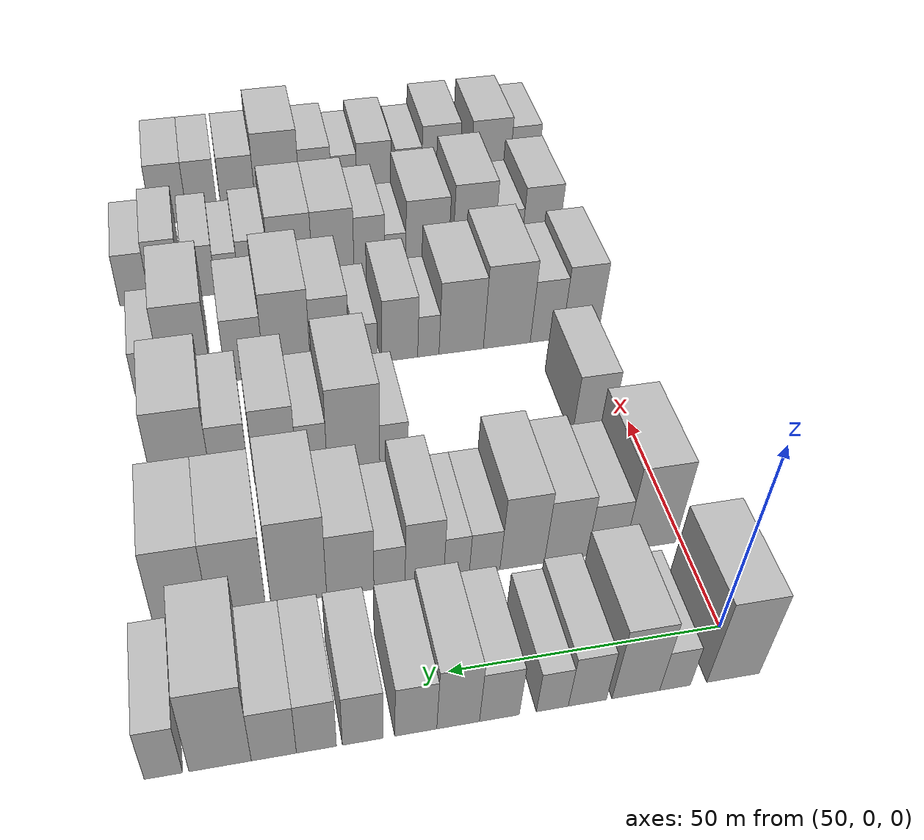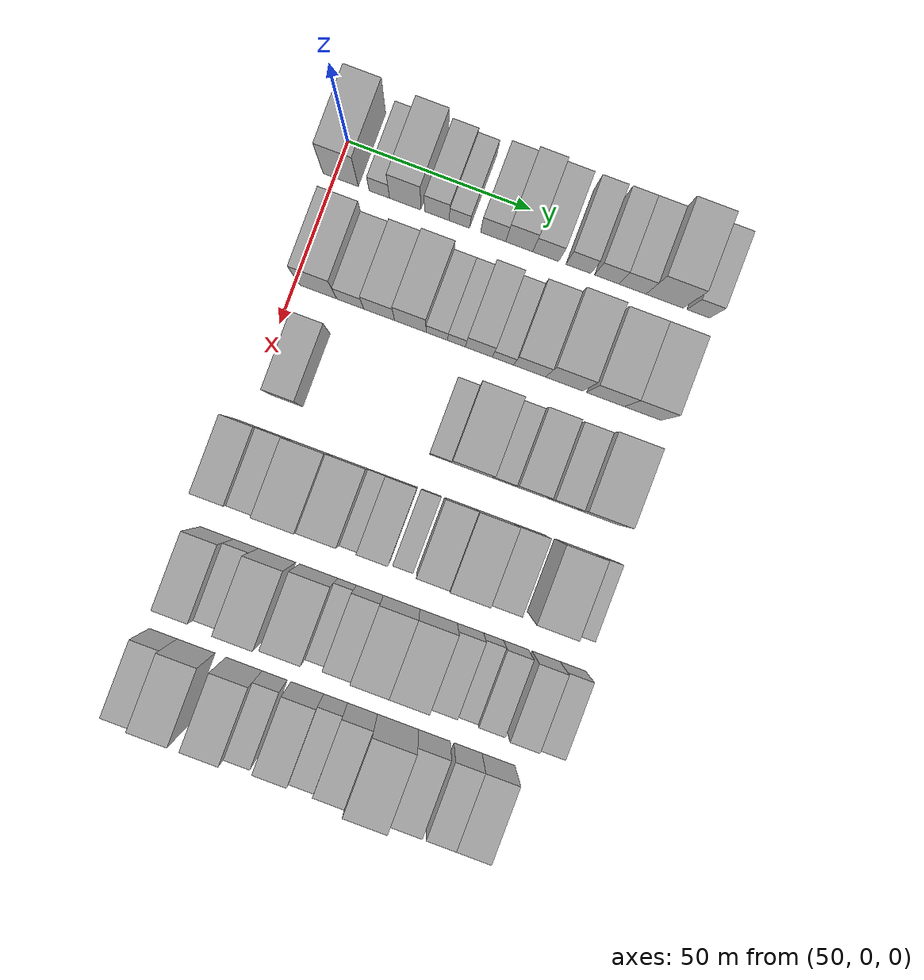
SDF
<sdf version="1.6">
 <world name="default">
  <model name="building_55">
   <static>1</static>
   <pose>50.0000 1.6876 0 0.000000 0.000000 0.000000</pose>
   <link name="link">
    <pose>0 0 12.00 0 0 0</pose>
    <collision name="collision"><geometry><box><size>20.0000 9.6382 24.0000</size></box></geometry></collision>
    <visual name="visual">
     <cast_shadows>0</cast_shadows>
     <geometry><box><size>20.0000 9.6382 24.0000</size></box></geometry>
     <material>
      <script>
       <uri>model://HANNAS_wall/materials/scripts</uri>
       <uri>model://HANNAS_wall/materials/textures</uri>
       <name>vrc/HANNAS_wall</name>
      </script>
     </material>
    </visual>
   </link>
  </model>
  <model name="building_56">
   <static>1</static>
   <pose>50.0000 12.2809 0 0.000000 0.000000 0.000000</pose>
   <link name="link">
    <pose>0 0 6.00 0 0 0</pose>
    <collision name="collision"><geometry><box><size>20.0000 5.5483 12.0000</size></box></geometry></collision>
    <visual name="visual">
     <cast_shadows>0</cast_shadows>
     <geometry><box><size>20.0000 5.5483 12.0000</size></box></geometry>
     <material>
      <script>
       <uri>model://HANNAS_wall/materials/scripts</uri>
       <uri>model://HANNAS_wall/materials/textures</uri>
       <name>vrc/HANNAS_wall</name>
      </script>
     </material>
    </visual>
   </link>
  </model>
  <model name="building_57">
   <static>1</static>
   <pose>50.0000 19.3455 0 0.000000 0.000000 0.000000</pose>
   <link name="link">
    <pose>0 0 10.50 0 0 0</pose>
    <collision name="collision"><geometry><box><size>20.0000 8.5810 21.0000</size></box></geometry></collision>
    <visual name="visual">
     <cast_shadows>0</cast_shadows>
     <geometry><box><size>20.0000 8.5810 21.0000</size></box></geometry>
     <material>
      <script>
       <uri>model://HANNAS_wall/materials/scripts</uri>
       <uri>model://HANNAS_wall/materials/textures</uri>
       <name>vrc/HANNAS_wall</name>
      </script>
     </material>
    </visual>
   </link>
  </model>
  <model name="building_58">
   <static>1</static>
   <pose>50.0000 28.0210 0 0.000000 0.000000 0.000000</pose>
   <link name="link">
    <pose>0 0 7.50 0 0 0</pose>
    <collision name="collision"><geometry><box><size>20.0000 6.7700 15.0000</size></box></geometry></collision>
    <visual name="visual">
     <cast_shadows>0</cast_shadows>
     <geometry><box><size>20.0000 6.7700 15.0000</size></box></geometry>
     <material>
      <script>
       <uri>model://HANNAS_wall/materials/scripts</uri>
       <uri>model://HANNAS_wall/materials/textures</uri>
       <name>vrc/HANNAS_wall</name>
      </script>
     </material>
    </visual>
   </link>
  </model>
  <model name="building_59">
   <static>1</static>
   <pose>50.0000 34.2155 0 0.000000 0.000000 0.000000</pose>
   <link name="link">
    <pose>0 0 6.00 0 0 0</pose>
    <collision name="collision"><geometry><box><size>20.0000 5.6189 12.0000</size></box></geometry></collision>
    <visual name="visual">
     <cast_shadows>0</cast_shadows>
     <geometry><box><size>20.0000 5.6189 12.0000</size></box></geometry>
     <material>
      <script>
       <uri>model://HANNAS_wall/materials/scripts</uri>
       <uri>model://HANNAS_wall/materials/textures</uri>
       <name>vrc/HANNAS_wall</name>
      </script>
     </material>
    </visual>
   </link>
  </model>
  <model name="building_60">
   <static>1</static>
   <pose>50.0000 43.4858 0 0.000000 0.000000 0.000000</pose>
   <link name="link">
    <pose>0 0 7.50 0 0 0</pose>
    <collision name="collision"><geometry><box><size>20.0000 6.9217 15.0000</size></box></geometry></collision>
    <visual name="visual">
     <cast_shadows>0</cast_shadows>
     <geometry><box><size>20.0000 6.9217 15.0000</size></box></geometry>
     <material>
      <script>
       <uri>model://HANNAS_wall/materials/scripts</uri>
       <uri>model://HANNAS_wall/materials/textures</uri>
       <name>vrc/HANNAS_wall</name>
      </script>
     </material>
    </visual>
   </link>
  </model>
  <model name="building_61">
   <static>1</static>
   <pose>50.0000 50.6278 0 0.000000 0.000000 0.000000</pose>
   <link name="link">
    <pose>0 0 9.00 0 0 0</pose>
    <collision name="collision"><geometry><box><size>20.0000 7.3623 18.0000</size></box></geometry></collision>
    <visual name="visual">
     <cast_shadows>0</cast_shadows>
     <geometry><box><size>20.0000 7.3623 18.0000</size></box></geometry>
     <material>
      <script>
       <uri>model://HANNAS_wall/materials/scripts</uri>
       <uri>model://HANNAS_wall/materials/textures</uri>
       <name>vrc/HANNAS_wall</name>
      </script>
     </material>
    </visual>
   </link>
  </model>
  <model name="building_62">
   <static>1</static>
   <pose>50.0000 57.8925 0 0.000000 0.000000 0.000000</pose>
   <link name="link">
    <pose>0 0 7.50 0 0 0</pose>
    <collision name="collision"><geometry><box><size>20.0000 7.1673 15.0000</size></box></geometry></collision>
    <visual name="visual">
     <cast_shadows>0</cast_shadows>
     <geometry><box><size>20.0000 7.1673 15.0000</size></box></geometry>
     <material>
      <script>
       <uri>model://HANNAS_wall/materials/scripts</uri>
       <uri>model://HANNAS_wall/materials/textures</uri>
       <name>vrc/HANNAS_wall</name>
      </script>
     </material>
    </visual>
   </link>
  </model>
  <model name="building_63">
   <static>1</static>
   <pose>50.0000 66.8989 0 0.000000 0.000000 0.000000</pose>
   <link name="link">
    <pose>0 0 7.50 0 0 0</pose>
    <collision name="collision"><geometry><box><size>20.0000 6.8454 15.0000</size></box></geometry></collision>
    <visual name="visual">
     <cast_shadows>0</cast_shadows>
     <geometry><box><size>20.0000 6.8454 15.0000</size></box></geometry>
     <material>
      <script>
       <uri>model://HANNAS_wall/materials/scripts</uri>
       <uri>model://HANNAS_wall/materials/textures</uri>
       <name>vrc/HANNAS_wall</name>
      </script>
     </material>
    </visual>
   </link>
  </model>
  <model name="building_64">
   <static>1</static>
   <pose>50.0000 74.6538 0 0.000000 0.000000 0.000000</pose>
   <link name="link">
    <pose>0 0 7.50 0 0 0</pose>
    <collision name="collision"><geometry><box><size>20.0000 6.6643 15.0000</size></box></geometry></collision>
    <visual name="visual">
     <cast_shadows>0</cast_shadows>
     <geometry><box><size>20.0000 6.6643 15.0000</size></box></geometry>
     <material>
      <script>
       <uri>model://HANNAS_wall/materials/scripts</uri>
       <uri>model://HANNAS_wall/materials/textures</uri>
       <name>vrc/HANNAS_wall</name>
      </script>
     </material>
    </visual>
   </link>
  </model>
  <model name="building_65">
   <static>1</static>
   <pose>50.0000 81.7126 0 0.000000 0.000000 0.000000</pose>
   <link name="link">
    <pose>0 0 7.50 0 0 0</pose>
    <collision name="collision"><geometry><box><size>20.0000 7.4533 15.0000</size></box></geometry></collision>
    <visual name="visual">
     <cast_shadows>0</cast_shadows>
     <geometry><box><size>20.0000 7.4533 15.0000</size></box></geometry>
     <material>
      <script>
       <uri>model://HANNAS_wall/materials/scripts</uri>
       <uri>model://HANNAS_wall/materials/textures</uri>
       <name>vrc/HANNAS_wall</name>
      </script>
     </material>
    </visual>
   </link>
  </model>
  <model name="building_66">
   <static>1</static>
   <pose>50.0000 90.5444 0 0.000000 0.000000 0.000000</pose>
   <link name="link">
    <pose>0 0 12.00 0 0 0</pose>
    <collision name="collision"><geometry><box><size>20.0000 10.2104 24.0000</size></box></geometry></collision>
    <visual name="visual">
     <cast_shadows>0</cast_shadows>
     <geometry><box><size>20.0000 10.2104 24.0000</size></box></geometry>
     <material>
      <script>
       <uri>model://HANNAS_wall/materials/scripts</uri>
       <uri>model://HANNAS_wall/materials/textures</uri>
       <name>vrc/HANNAS_wall</name>
      </script>
     </material>
    </visual>
   </link>
  </model>
  <model name="building_67">
   <static>1</static>
   <pose>50.0000 99.7578 0 0.000000 0.000000 0.000000</pose>
   <link name="link">
    <pose>0 0 7.50 0 0 0</pose>
    <collision name="collision"><geometry><box><size>20.0000 6.2163 15.0000</size></box></geometry></collision>
    <visual name="visual">
     <cast_shadows>0</cast_shadows>
     <geometry><box><size>20.0000 6.2163 15.0000</size></box></geometry>
     <material>
      <script>
       <uri>model://HANNAS_wall/materials/scripts</uri>
       <uri>model://HANNAS_wall/materials/textures</uri>
       <name>vrc/HANNAS_wall</name>
      </script>
     </material>
    </visual>
   </link>
  </model>
  <model name="building_163">
   <static>1</static>
   <pose>79.0000 6.4632 0 0.000000 0.000000 0.000000</pose>
   <link name="link">
    <pose>0 0 12.00 0 0 0</pose>
    <collision name="collision"><geometry><box><size>20.0000 10.1292 24.0000</size></box></geometry></collision>
    <visual name="visual">
     <cast_shadows>0</cast_shadows>
     <geometry><box><size>20.0000 10.1292 24.0000</size></box></geometry>
     <material>
      <script>
       <uri>model://HANNAS_wall/materials/scripts</uri>
       <uri>model://HANNAS_wall/materials/textures</uri>
       <name>vrc/HANNAS_wall</name>
      </script>
     </material>
    </visual>
   </link>
  </model>
  <model name="building_164">
   <static>1</static>
   <pose>79.0000 15.2209 0 0.000000 0.000000 0.000000</pose>
   <link name="link">
    <pose>0 0 7.50 0 0 0</pose>
    <collision name="collision"><geometry><box><size>20.0000 7.3860 15.0000</size></box></geometry></collision>
    <visual name="visual">
     <cast_shadows>0</cast_shadows>
     <geometry><box><size>20.0000 7.3860 15.0000</size></box></geometry>
     <material>
      <script>
       <uri>model://HANNAS_wall/materials/scripts</uri>
       <uri>model://HANNAS_wall/materials/textures</uri>
       <name>vrc/HANNAS_wall</name>
      </script>
     </material>
    </visual>
   </link>
  </model>
  <model name="building_165">
   <static>1</static>
   <pose>79.0000 23.1251 0 0.000000 0.000000 0.000000</pose>
   <link name="link">
    <pose>0 0 9.00 0 0 0</pose>
    <collision name="collision"><geometry><box><size>20.0000 8.4223 18.0000</size></box></geometry></collision>
    <visual name="visual">
     <cast_shadows>0</cast_shadows>
     <geometry><box><size>20.0000 8.4223 18.0000</size></box></geometry>
     <material>
      <script>
       <uri>model://HANNAS_wall/materials/scripts</uri>
       <uri>model://HANNAS_wall/materials/textures</uri>
       <name>vrc/HANNAS_wall</name>
      </script>
     </material>
    </visual>
   </link>
  </model>
  <model name="building_166">
   <static>1</static>
   <pose>79.0000 31.6337 0 0.000000 0.000000 0.000000</pose>
   <link name="link">
    <pose>0 0 10.50 0 0 0</pose>
    <collision name="collision"><geometry><box><size>20.0000 8.5950 21.0000</size></box></geometry></collision>
    <visual name="visual">
     <cast_shadows>0</cast_shadows>
     <geometry><box><size>20.0000 8.5950 21.0000</size></box></geometry>
     <material>
      <script>
       <uri>model://HANNAS_wall/materials/scripts</uri>
       <uri>model://HANNAS_wall/materials/textures</uri>
       <name>vrc/HANNAS_wall</name>
      </script>
     </material>
    </visual>
   </link>
  </model>
  <model name="building_167">
   <static>1</static>
   <pose>79.0000 38.8877 0 0.000000 0.000000 0.000000</pose>
   <link name="link">
    <pose>0 0 6.00 0 0 0</pose>
    <collision name="collision"><geometry><box><size>20.0000 5.9130 12.0000</size></box></geometry></collision>
    <visual name="visual">
     <cast_shadows>0</cast_shadows>
     <geometry><box><size>20.0000 5.9130 12.0000</size></box></geometry>
     <material>
      <script>
       <uri>model://HANNAS_wall/materials/scripts</uri>
       <uri>model://HANNAS_wall/materials/textures</uri>
       <name>vrc/HANNAS_wall</name>
      </script>
     </material>
    </visual>
   </link>
  </model>
  <model name="building_168">
   <static>1</static>
   <pose>79.0000 44.2893 0 0.000000 0.000000 0.000000</pose>
   <link name="link">
    <pose>0 0 6.00 0 0 0</pose>
    <collision name="collision"><geometry><box><size>20.0000 4.8902 12.0000</size></box></geometry></collision>
    <visual name="visual">
     <cast_shadows>0</cast_shadows>
     <geometry><box><size>20.0000 4.8902 12.0000</size></box></geometry>
     <material>
      <script>
       <uri>model://HANNAS_wall/materials/scripts</uri>
       <uri>model://HANNAS_wall/materials/textures</uri>
       <name>vrc/HANNAS_wall</name>
      </script>
     </material>
    </visual>
   </link>
  </model>
  <model name="building_169">
   <static>1</static>
   <pose>79.0000 50.4029 0 0.000000 0.000000 0.000000</pose>
   <link name="link">
    <pose>0 0 9.00 0 0 0</pose>
    <collision name="collision"><geometry><box><size>20.0000 7.3370 18.0000</size></box></geometry></collision>
    <visual name="visual">
     <cast_shadows>0</cast_shadows>
     <geometry><box><size>20.0000 7.3370 18.0000</size></box></geometry>
     <material>
      <script>
       <uri>model://HANNAS_wall/materials/scripts</uri>
       <uri>model://HANNAS_wall/materials/textures</uri>
       <name>vrc/HANNAS_wall</name>
      </script>
     </material>
    </visual>
   </link>
  </model>
  <model name="building_170">
   <static>1</static>
   <pose>79.0000 56.9866 0 0.000000 0.000000 0.000000</pose>
   <link name="link">
    <pose>0 0 6.00 0 0 0</pose>
    <collision name="collision"><geometry><box><size>20.0000 5.8304 12.0000</size></box></geometry></collision>
    <visual name="visual">
     <cast_shadows>0</cast_shadows>
     <geometry><box><size>20.0000 5.8304 12.0000</size></box></geometry>
     <material>
      <script>
       <uri>model://HANNAS_wall/materials/scripts</uri>
       <uri>model://HANNAS_wall/materials/textures</uri>
       <name>vrc/HANNAS_wall</name>
      </script>
     </material>
    </visual>
   </link>
  </model>
  <model name="building_171">
   <static>1</static>
   <pose>79.0000 64.2986 0 0.000000 0.000000 0.000000</pose>
   <link name="link">
    <pose>0 0 9.00 0 0 0</pose>
    <collision name="collision"><geometry><box><size>20.0000 8.7936 18.0000</size></box></geometry></collision>
    <visual name="visual">
     <cast_shadows>0</cast_shadows>
     <geometry><box><size>20.0000 8.7936 18.0000</size></box></geometry>
     <material>
      <script>
       <uri>model://HANNAS_wall/materials/scripts</uri>
       <uri>model://HANNAS_wall/materials/textures</uri>
       <name>vrc/HANNAS_wall</name>
      </script>
     </material>
    </visual>
   </link>
  </model>
  <model name="building_172">
   <static>1</static>
   <pose>79.0000 73.8368 0 0.000000 0.000000 0.000000</pose>
   <link name="link">
    <pose>0 0 12.00 0 0 0</pose>
    <collision name="collision"><geometry><box><size>20.0000 10.2828 24.0000</size></box></geometry></collision>
    <visual name="visual">
     <cast_shadows>0</cast_shadows>
     <geometry><box><size>20.0000 10.2828 24.0000</size></box></geometry>
     <material>
      <script>
       <uri>model://HANNAS_wall/materials/scripts</uri>
       <uri>model://HANNAS_wall/materials/textures</uri>
       <name>vrc/HANNAS_wall</name>
      </script>
     </material>
    </visual>
   </link>
  </model>
  <model name="building_173">
   <static>1</static>
   <pose>79.0000 85.1371 0 0.000000 0.000000 0.000000</pose>
   <link name="link">
    <pose>0 0 10.50 0 0 0</pose>
    <collision name="collision"><geometry><box><size>20.0000 10.3178 21.0000</size></box></geometry></collision>
    <visual name="visual">
     <cast_shadows>0</cast_shadows>
     <geometry><box><size>20.0000 10.3178 21.0000</size></box></geometry>
     <material>
      <script>
       <uri>model://HANNAS_wall/materials/scripts</uri>
       <uri>model://HANNAS_wall/materials/textures</uri>
       <name>vrc/HANNAS_wall</name>
      </script>
     </material>
    </visual>
   </link>
  </model>
  <model name="building_174">
   <static>1</static>
   <pose>79.0000 95.3200 0 0.000000 0.000000 0.000000</pose>
   <link name="link">
    <pose>0 0 10.50 0 0 0</pose>
    <collision name="collision"><geometry><box><size>20.0000 10.0480 21.0000</size></box></geometry></collision>
    <visual name="visual">
     <cast_shadows>0</cast_shadows>
     <geometry><box><size>20.0000 10.0480 21.0000</size></box></geometry>
     <material>
      <script>
       <uri>model://HANNAS_wall/materials/scripts</uri>
       <uri>model://HANNAS_wall/materials/textures</uri>
       <name>vrc/HANNAS_wall</name>
      </script>
     </material>
    </visual>
   </link>
  </model>
  <model name="building_277">
   <static>1</static>
   <pose>108.0000 8.8311 0 0.000000 0.000000 0.000000</pose>
   <link name="link">
    <pose>0 0 9.00 0 0 0</pose>
    <collision name="collision"><geometry><box><size>20.0000 8.4463 18.0000</size></box></geometry></collision>
    <visual name="visual">
     <cast_shadows>0</cast_shadows>
     <geometry><box><size>20.0000 8.4463 18.0000</size></box></geometry>
     <material>
      <script>
       <uri>model://HANNAS_wall/materials/scripts</uri>
       <uri>model://HANNAS_wall/materials/textures</uri>
       <name>vrc/HANNAS_wall</name>
      </script>
     </material>
    </visual>
   </link>
  </model>
  <model name="building_278">
   <static>1</static>
   <pose>108.0000 50.7132 0 0.000000 0.000000 0.000000</pose>
   <link name="link">
    <pose>0 0 6.00 0 0 0</pose>
    <collision name="collision"><geometry><box><size>20.0000 5.7726 12.0000</size></box></geometry></collision>
    <visual name="visual">
     <cast_shadows>0</cast_shadows>
     <geometry><box><size>20.0000 5.7726 12.0000</size></box></geometry>
     <material>
      <script>
       <uri>model://HANNAS_wall/materials/scripts</uri>
       <uri>model://HANNAS_wall/materials/textures</uri>
       <name>vrc/HANNAS_wall</name>
      </script>
     </material>
    </visual>
   </link>
  </model>
  <model name="building_279">
   <static>1</static>
   <pose>108.0000 58.9692 0 0.000000 0.000000 0.000000</pose>
   <link name="link">
    <pose>0 0 12.00 0 0 0</pose>
    <collision name="collision"><geometry><box><size>20.0000 10.7393 24.0000</size></box></geometry></collision>
    <visual name="visual">
     <cast_shadows>0</cast_shadows>
     <geometry><box><size>20.0000 10.7393 24.0000</size></box></geometry>
     <material>
      <script>
       <uri>model://HANNAS_wall/materials/scripts</uri>
       <uri>model://HANNAS_wall/materials/textures</uri>
       <name>vrc/HANNAS_wall</name>
      </script>
     </material>
    </visual>
   </link>
  </model>
  <model name="building_280">
   <static>1</static>
   <pose>108.0000 67.4175 0 0.000000 0.000000 0.000000</pose>
   <link name="link">
    <pose>0 0 7.50 0 0 0</pose>
    <collision name="collision"><geometry><box><size>20.0000 6.1573 15.0000</size></box></geometry></collision>
    <visual name="visual">
     <cast_shadows>0</cast_shadows>
     <geometry><box><size>20.0000 6.1573 15.0000</size></box></geometry>
     <material>
      <script>
       <uri>model://HANNAS_wall/materials/scripts</uri>
       <uri>model://HANNAS_wall/materials/textures</uri>
       <name>vrc/HANNAS_wall</name>
      </script>
     </material>
    </visual>
   </link>
  </model>
  <model name="building_281">
   <static>1</static>
   <pose>108.0000 74.7666 0 0.000000 0.000000 0.000000</pose>
   <link name="link">
    <pose>0 0 10.50 0 0 0</pose>
    <collision name="collision"><geometry><box><size>20.0000 8.5410 21.0000</size></box></geometry></collision>
    <visual name="visual">
     <cast_shadows>0</cast_shadows>
     <geometry><box><size>20.0000 8.5410 21.0000</size></box></geometry>
     <material>
      <script>
       <uri>model://HANNAS_wall/materials/scripts</uri>
       <uri>model://HANNAS_wall/materials/textures</uri>
       <name>vrc/HANNAS_wall</name>
      </script>
     </material>
    </visual>
   </link>
  </model>
  <model name="building_282">
   <static>1</static>
   <pose>108.0000 83.7679 0 0.000000 0.000000 0.000000</pose>
   <link name="link">
    <pose>0 0 9.00 0 0 0</pose>
    <collision name="collision"><geometry><box><size>20.0000 7.4615 18.0000</size></box></geometry></collision>
    <visual name="visual">
     <cast_shadows>0</cast_shadows>
     <geometry><box><size>20.0000 7.4615 18.0000</size></box></geometry>
     <material>
      <script>
       <uri>model://HANNAS_wall/materials/scripts</uri>
       <uri>model://HANNAS_wall/materials/textures</uri>
       <name>vrc/HANNAS_wall</name>
      </script>
     </material>
    </visual>
   </link>
  </model>
  <model name="building_283">
   <static>1</static>
   <pose>108.0000 93.1952 0 0.000000 0.000000 0.000000</pose>
   <link name="link">
    <pose>0 0 12.00 0 0 0</pose>
    <collision name="collision"><geometry><box><size>20.0000 11.3932 24.0000</size></box></geometry></collision>
    <visual name="visual">
     <cast_shadows>0</cast_shadows>
     <geometry><box><size>20.0000 11.3932 24.0000</size></box></geometry>
     <material>
      <script>
       <uri>model://HANNAS_wall/materials/scripts</uri>
       <uri>model://HANNAS_wall/materials/textures</uri>
       <name>vrc/HANNAS_wall</name>
      </script>
     </material>
    </visual>
   </link>
  </model>
  <model name="building_390">
   <static>1</static>
   <pose>137.0000 2.2405 0 0.000000 0.000000 0.000000</pose>
   <link name="link">
    <pose>0 0 10.50 0 0 0</pose>
    <collision name="collision"><geometry><box><size>20.0000 8.6264 21.0000</size></box></geometry></collision>
    <visual name="visual">
     <cast_shadows>0</cast_shadows>
     <geometry><box><size>20.0000 8.6264 21.0000</size></box></geometry>
     <material>
      <script>
       <uri>model://HANNAS_wall/materials/scripts</uri>
       <uri>model://HANNAS_wall/materials/textures</uri>
       <name>vrc/HANNAS_wall</name>
      </script>
     </material>
    </visual>
   </link>
  </model>
  <model name="building_391">
   <static>1</static>
   <pose>137.0000 10.2466 0 0.000000 0.000000 0.000000</pose>
   <link name="link">
    <pose>0 0 9.00 0 0 0</pose>
    <collision name="collision"><geometry><box><size>20.0000 7.3857 18.0000</size></box></geometry></collision>
    <visual name="visual">
     <cast_shadows>0</cast_shadows>
     <geometry><box><size>20.0000 7.3857 18.0000</size></box></geometry>
     <material>
      <script>
       <uri>model://HANNAS_wall/materials/scripts</uri>
       <uri>model://HANNAS_wall/materials/textures</uri>
       <name>vrc/HANNAS_wall</name>
      </script>
     </material>
    </visual>
   </link>
  </model>
  <model name="building_392">
   <static>1</static>
   <pose>137.0000 19.3684 0 0.000000 0.000000 0.000000</pose>
   <link name="link">
    <pose>0 0 12.00 0 0 0</pose>
    <collision name="collision"><geometry><box><size>20.0000 10.8581 24.0000</size></box></geometry></collision>
    <visual name="visual">
     <cast_shadows>0</cast_shadows>
     <geometry><box><size>20.0000 10.8581 24.0000</size></box></geometry>
     <material>
      <script>
       <uri>model://HANNAS_wall/materials/scripts</uri>
       <uri>model://HANNAS_wall/materials/textures</uri>
       <name>vrc/HANNAS_wall</name>
      </script>
     </material>
    </visual>
   </link>
  </model>
  <model name="building_393">
   <static>1</static>
   <pose>137.0000 29.8893 0 0.000000 0.000000 0.000000</pose>
   <link name="link">
    <pose>0 0 10.50 0 0 0</pose>
    <collision name="collision"><geometry><box><size>20.0000 10.1836 21.0000</size></box></geometry></collision>
    <visual name="visual">
     <cast_shadows>0</cast_shadows>
     <geometry><box><size>20.0000 10.1836 21.0000</size></box></geometry>
     <material>
      <script>
       <uri>model://HANNAS_wall/materials/scripts</uri>
       <uri>model://HANNAS_wall/materials/textures</uri>
       <name>vrc/HANNAS_wall</name>
      </script>
     </material>
    </visual>
   </link>
  </model>
  <model name="building_394">
   <static>1</static>
   <pose>137.0000 37.4049 0 0.000000 0.000000 0.000000</pose>
   <link name="link">
    <pose>0 0 6.00 0 0 0</pose>
    <collision name="collision"><geometry><box><size>20.0000 4.8477 12.0000</size></box></geometry></collision>
    <visual name="visual">
     <cast_shadows>0</cast_shadows>
     <geometry><box><size>20.0000 4.8477 12.0000</size></box></geometry>
     <material>
      <script>
       <uri>model://HANNAS_wall/materials/scripts</uri>
       <uri>model://HANNAS_wall/materials/textures</uri>
       <name>vrc/HANNAS_wall</name>
      </script>
     </material>
    </visual>
   </link>
  </model>
  <model name="building_395">
   <static>1</static>
   <pose>137.0000 43.8890 0 0.000000 0.000000 0.000000</pose>
   <link name="link">
    <pose>0 0 9.00 0 0 0</pose>
    <collision name="collision"><geometry><box><size>20.0000 8.1205 18.0000</size></box></geometry></collision>
    <visual name="visual">
     <cast_shadows>0</cast_shadows>
     <geometry><box><size>20.0000 8.1205 18.0000</size></box></geometry>
     <material>
      <script>
       <uri>model://HANNAS_wall/materials/scripts</uri>
       <uri>model://HANNAS_wall/materials/textures</uri>
       <name>vrc/HANNAS_wall</name>
      </script>
     </material>
    </visual>
   </link>
  </model>
  <model name="building_396">
   <static>1</static>
   <pose>137.0000 51.6131 0 0.000000 0.000000 0.000000</pose>
   <link name="link">
    <pose>0 0 6.00 0 0 0</pose>
    <collision name="collision"><geometry><box><size>20.0000 5.3279 12.0000</size></box></geometry></collision>
    <visual name="visual">
     <cast_shadows>0</cast_shadows>
     <geometry><box><size>20.0000 5.3279 12.0000</size></box></geometry>
     <material>
      <script>
       <uri>model://HANNAS_wall/materials/scripts</uri>
       <uri>model://HANNAS_wall/materials/textures</uri>
       <name>vrc/HANNAS_wall</name>
      </script>
     </material>
    </visual>
   </link>
  </model>
  <model name="building_397">
   <static>1</static>
   <pose>137.0000 59.5219 0 0.000000 0.000000 0.000000</pose>
   <link name="link">
    <pose>0 0 10.50 0 0 0</pose>
    <collision name="collision"><geometry><box><size>20.0000 8.4896 21.0000</size></box></geometry></collision>
    <visual name="visual">
     <cast_shadows>0</cast_shadows>
     <geometry><box><size>20.0000 8.4896 21.0000</size></box></geometry>
     <material>
      <script>
       <uri>model://HANNAS_wall/materials/scripts</uri>
       <uri>model://HANNAS_wall/materials/textures</uri>
       <name>vrc/HANNAS_wall</name>
      </script>
     </material>
    </visual>
   </link>
  </model>
  <model name="building_398">
   <static>1</static>
   <pose>137.0000 68.8713 0 0.000000 0.000000 0.000000</pose>
   <link name="link">
    <pose>0 0 12.00 0 0 0</pose>
    <collision name="collision"><geometry><box><size>20.0000 10.2093 24.0000</size></box></geometry></collision>
    <visual name="visual">
     <cast_shadows>0</cast_shadows>
     <geometry><box><size>20.0000 10.2093 24.0000</size></box></geometry>
     <material>
      <script>
       <uri>model://HANNAS_wall/materials/scripts</uri>
       <uri>model://HANNAS_wall/materials/textures</uri>
       <name>vrc/HANNAS_wall</name>
      </script>
     </material>
    </visual>
   </link>
  </model>
  <model name="building_399">
   <static>1</static>
   <pose>137.0000 78.1749 0 0.000000 0.000000 0.000000</pose>
   <link name="link">
    <pose>0 0 9.00 0 0 0</pose>
    <collision name="collision"><geometry><box><size>20.0000 8.3979 18.0000</size></box></geometry></collision>
    <visual name="visual">
     <cast_shadows>0</cast_shadows>
     <geometry><box><size>20.0000 8.3979 18.0000</size></box></geometry>
     <material>
      <script>
       <uri>model://HANNAS_wall/materials/scripts</uri>
       <uri>model://HANNAS_wall/materials/textures</uri>
       <name>vrc/HANNAS_wall</name>
      </script>
     </material>
    </visual>
   </link>
  </model>
  <model name="building_400">
   <static>1</static>
   <pose>137.0000 90.7172 0 0.000000 0.000000 0.000000</pose>
   <link name="link">
    <pose>0 0 12.00 0 0 0</pose>
    <collision name="collision"><geometry><box><size>20.0000 10.6866 24.0000</size></box></geometry></collision>
    <visual name="visual">
     <cast_shadows>0</cast_shadows>
     <geometry><box><size>20.0000 10.6866 24.0000</size></box></geometry>
     <material>
      <script>
       <uri>model://HANNAS_wall/materials/scripts</uri>
       <uri>model://HANNAS_wall/materials/textures</uri>
       <name>vrc/HANNAS_wall</name>
      </script>
     </material>
    </visual>
   </link>
  </model>
  <model name="building_401">
   <static>1</static>
   <pose>137.0000 99.0380 0 0.000000 0.000000 0.000000</pose>
   <link name="link">
    <pose>0 0 6.00 0 0 0</pose>
    <collision name="collision"><geometry><box><size>20.0000 5.9550 12.0000</size></box></geometry></collision>
    <visual name="visual">
     <cast_shadows>0</cast_shadows>
     <geometry><box><size>20.0000 5.9550 12.0000</size></box></geometry>
     <material>
      <script>
       <uri>model://HANNAS_wall/materials/scripts</uri>
       <uri>model://HANNAS_wall/materials/textures</uri>
       <name>vrc/HANNAS_wall</name>
      </script>
     </material>
    </visual>
   </link>
  </model>
  <model name="building_505">
   <static>1</static>
   <pose>166.0000 3.8300 0 0.000000 0.000000 0.000000</pose>
   <link name="link">
    <pose>0 0 10.50 0 0 0</pose>
    <collision name="collision"><geometry><box><size>20.0000 9.1930 21.0000</size></box></geometry></collision>
    <visual name="visual">
     <cast_shadows>0</cast_shadows>
     <geometry><box><size>20.0000 9.1930 21.0000</size></box></geometry>
     <material>
      <script>
       <uri>model://HANNAS_wall/materials/scripts</uri>
       <uri>model://HANNAS_wall/materials/textures</uri>
       <name>vrc/HANNAS_wall</name>
      </script>
     </material>
    </visual>
   </link>
  </model>
  <model name="building_506">
   <static>1</static>
   <pose>166.0000 11.8275 0 0.000000 0.000000 0.000000</pose>
   <link name="link">
    <pose>0 0 7.50 0 0 0</pose>
    <collision name="collision"><geometry><box><size>20.0000 6.8021 15.0000</size></box></geometry></collision>
    <visual name="visual">
     <cast_shadows>0</cast_shadows>
     <geometry><box><size>20.0000 6.8021 15.0000</size></box></geometry>
     <material>
      <script>
       <uri>model://HANNAS_wall/materials/scripts</uri>
       <uri>model://HANNAS_wall/materials/textures</uri>
       <name>vrc/HANNAS_wall</name>
      </script>
     </material>
    </visual>
   </link>
  </model>
  <model name="building_507">
   <static>1</static>
   <pose>166.0000 20.3329 0 0.000000 0.000000 0.000000</pose>
   <link name="link">
    <pose>0 0 12.00 0 0 0</pose>
    <collision name="collision"><geometry><box><size>20.0000 10.2089 24.0000</size></box></geometry></collision>
    <visual name="visual">
     <cast_shadows>0</cast_shadows>
     <geometry><box><size>20.0000 10.2089 24.0000</size></box></geometry>
     <material>
      <script>
       <uri>model://HANNAS_wall/materials/scripts</uri>
       <uri>model://HANNAS_wall/materials/textures</uri>
       <name>vrc/HANNAS_wall</name>
      </script>
     </material>
    </visual>
   </link>
  </model>
  <model name="building_508">
   <static>1</static>
   <pose>166.0000 31.6842 0 0.000000 0.000000 0.000000</pose>
   <link name="link">
    <pose>0 0 10.50 0 0 0</pose>
    <collision name="collision"><geometry><box><size>20.0000 10.4938 21.0000</size></box></geometry></collision>
    <visual name="visual">
     <cast_shadows>0</cast_shadows>
     <geometry><box><size>20.0000 10.4938 21.0000</size></box></geometry>
     <material>
      <script>
       <uri>model://HANNAS_wall/materials/scripts</uri>
       <uri>model://HANNAS_wall/materials/textures</uri>
       <name>vrc/HANNAS_wall</name>
      </script>
     </material>
    </visual>
   </link>
  </model>
  <model name="building_509">
   <static>1</static>
   <pose>166.0000 39.4787 0 0.000000 0.000000 0.000000</pose>
   <link name="link">
    <pose>0 0 6.00 0 0 0</pose>
    <collision name="collision"><geometry><box><size>20.0000 5.0951 12.0000</size></box></geometry></collision>
    <visual name="visual">
     <cast_shadows>0</cast_shadows>
     <geometry><box><size>20.0000 5.0951 12.0000</size></box></geometry>
     <material>
      <script>
       <uri>model://HANNAS_wall/materials/scripts</uri>
       <uri>model://HANNAS_wall/materials/textures</uri>
       <name>vrc/HANNAS_wall</name>
      </script>
     </material>
    </visual>
   </link>
  </model>
  <model name="building_510">
   <static>1</static>
   <pose>166.0000 45.7065 0 0.000000 0.000000 0.000000</pose>
   <link name="link">
    <pose>0 0 9.00 0 0 0</pose>
    <collision name="collision"><geometry><box><size>20.0000 7.3606 18.0000</size></box></geometry></collision>
    <visual name="visual">
     <cast_shadows>0</cast_shadows>
     <geometry><box><size>20.0000 7.3606 18.0000</size></box></geometry>
     <material>
      <script>
       <uri>model://HANNAS_wall/materials/scripts</uri>
       <uri>model://HANNAS_wall/materials/textures</uri>
       <name>vrc/HANNAS_wall</name>
      </script>
     </material>
    </visual>
   </link>
  </model>
  <model name="building_511">
   <static>1</static>
   <pose>166.0000 54.3565 0 0.000000 0.000000 0.000000</pose>
   <link name="link">
    <pose>0 0 10.50 0 0 0</pose>
    <collision name="collision"><geometry><box><size>20.0000 9.9395 21.0000</size></box></geometry></collision>
    <visual name="visual">
     <cast_shadows>0</cast_shadows>
     <geometry><box><size>20.0000 9.9395 21.0000</size></box></geometry>
     <material>
      <script>
       <uri>model://HANNAS_wall/materials/scripts</uri>
       <uri>model://HANNAS_wall/materials/textures</uri>
       <name>vrc/HANNAS_wall</name>
      </script>
     </material>
    </visual>
   </link>
  </model>
  <model name="building_512">
   <static>1</static>
   <pose>166.0000 64.4476 0 0.000000 0.000000 0.000000</pose>
   <link name="link">
    <pose>0 0 10.50 0 0 0</pose>
    <collision name="collision"><geometry><box><size>20.0000 10.2427 21.0000</size></box></geometry></collision>
    <visual name="visual">
     <cast_shadows>0</cast_shadows>
     <geometry><box><size>20.0000 10.2427 21.0000</size></box></geometry>
     <material>
      <script>
       <uri>model://HANNAS_wall/materials/scripts</uri>
       <uri>model://HANNAS_wall/materials/textures</uri>
       <name>vrc/HANNAS_wall</name>
      </script>
     </material>
    </visual>
   </link>
  </model>
  <model name="building_513">
   <static>1</static>
   <pose>166.0000 73.1745 0 0.000000 0.000000 0.000000</pose>
   <link name="link">
    <pose>0 0 7.50 0 0 0</pose>
    <collision name="collision"><geometry><box><size>20.0000 7.2111 15.0000</size></box></geometry></collision>
    <visual name="visual">
     <cast_shadows>0</cast_shadows>
     <geometry><box><size>20.0000 7.2111 15.0000</size></box></geometry>
     <material>
      <script>
       <uri>model://HANNAS_wall/materials/scripts</uri>
       <uri>model://HANNAS_wall/materials/textures</uri>
       <name>vrc/HANNAS_wall</name>
      </script>
     </material>
    </visual>
   </link>
  </model>
  <model name="building_514">
   <static>1</static>
   <pose>166.0000 79.4996 0 0.000000 0.000000 0.000000</pose>
   <link name="link">
    <pose>0 0 6.00 0 0 0</pose>
    <collision name="collision"><geometry><box><size>20.0000 5.4392 12.0000</size></box></geometry></collision>
    <visual name="visual">
     <cast_shadows>0</cast_shadows>
     <geometry><box><size>20.0000 5.4392 12.0000</size></box></geometry>
     <material>
      <script>
       <uri>model://HANNAS_wall/materials/scripts</uri>
       <uri>model://HANNAS_wall/materials/textures</uri>
       <name>vrc/HANNAS_wall</name>
      </script>
     </material>
    </visual>
   </link>
  </model>
  <model name="building_515">
   <static>1</static>
   <pose>166.0000 85.6482 0 0.000000 0.000000 0.000000</pose>
   <link name="link">
    <pose>0 0 7.50 0 0 0</pose>
    <collision name="collision"><geometry><box><size>20.0000 6.8579 15.0000</size></box></geometry></collision>
    <visual name="visual">
     <cast_shadows>0</cast_shadows>
     <geometry><box><size>20.0000 6.8579 15.0000</size></box></geometry>
     <material>
      <script>
       <uri>model://HANNAS_wall/materials/scripts</uri>
       <uri>model://HANNAS_wall/materials/textures</uri>
       <name>vrc/HANNAS_wall</name>
      </script>
     </material>
    </visual>
   </link>
  </model>
  <model name="building_516">
   <static>1</static>
   <pose>166.0000 93.9031 0 0.000000 0.000000 0.000000</pose>
   <link name="link">
    <pose>0 0 9.00 0 0 0</pose>
    <collision name="collision"><geometry><box><size>20.0000 7.6520 18.0000</size></box></geometry></collision>
    <visual name="visual">
     <cast_shadows>0</cast_shadows>
     <geometry><box><size>20.0000 7.6520 18.0000</size></box></geometry>
     <material>
      <script>
       <uri>model://HANNAS_wall/materials/scripts</uri>
       <uri>model://HANNAS_wall/materials/textures</uri>
       <name>vrc/HANNAS_wall</name>
      </script>
     </material>
    </visual>
   </link>
  </model>
  <model name="building_517">
   <static>1</static>
   <pose>166.0000 101.2007 0 0.000000 0.000000 0.000000</pose>
   <link name="link">
    <pose>0 0 7.50 0 0 0</pose>
    <collision name="collision"><geometry><box><size>20.0000 6.9432 15.0000</size></box></geometry></collision>
    <visual name="visual">
     <cast_shadows>0</cast_shadows>
     <geometry><box><size>20.0000 6.9432 15.0000</size></box></geometry>
     <material>
      <script>
       <uri>model://HANNAS_wall/materials/scripts</uri>
       <uri>model://HANNAS_wall/materials/textures</uri>
       <name>vrc/HANNAS_wall</name>
      </script>
     </material>
    </visual>
   </link>
  </model>
  <model name="building_616">
   <static>1</static>
   <pose>195.0000 0.0006 0 0.000000 0.000000 0.000000</pose>
   <link name="link">
    <pose>0 0 9.00 0 0 0</pose>
    <collision name="collision"><geometry><box><size>20.0000 7.6277 18.0000</size></box></geometry></collision>
    <visual name="visual">
     <cast_shadows>0</cast_shadows>
     <geometry><box><size>20.0000 7.6277 18.0000</size></box></geometry>
     <material>
      <script>
       <uri>model://HANNAS_wall/materials/scripts</uri>
       <uri>model://HANNAS_wall/materials/textures</uri>
       <name>vrc/HANNAS_wall</name>
      </script>
     </material>
    </visual>
   </link>
  </model>
  <model name="building_617">
   <static>1</static>
   <pose>195.0000 9.0100 0 0.000000 0.000000 0.000000</pose>
   <link name="link">
    <pose>0 0 10.50 0 0 0</pose>
    <collision name="collision"><geometry><box><size>20.0000 10.3913 21.0000</size></box></geometry></collision>
    <visual name="visual">
     <cast_shadows>0</cast_shadows>
     <geometry><box><size>20.0000 10.3913 21.0000</size></box></geometry>
     <material>
      <script>
       <uri>model://HANNAS_wall/materials/scripts</uri>
       <uri>model://HANNAS_wall/materials/textures</uri>
       <name>vrc/HANNAS_wall</name>
      </script>
     </material>
    </visual>
   </link>
  </model>
  <model name="building_618">
   <static>1</static>
   <pose>195.0000 22.1558 0 0.000000 0.000000 0.000000</pose>
   <link name="link">
    <pose>0 0 10.50 0 0 0</pose>
    <collision name="collision"><geometry><box><size>20.0000 9.9003 21.0000</size></box></geometry></collision>
    <visual name="visual">
     <cast_shadows>0</cast_shadows>
     <geometry><box><size>20.0000 9.9003 21.0000</size></box></geometry>
     <material>
      <script>
       <uri>model://HANNAS_wall/materials/scripts</uri>
       <uri>model://HANNAS_wall/materials/textures</uri>
       <name>vrc/HANNAS_wall</name>
      </script>
     </material>
    </visual>
   </link>
  </model>
  <model name="building_619">
   <static>1</static>
   <pose>195.0000 30.5396 0 0.000000 0.000000 0.000000</pose>
   <link name="link">
    <pose>0 0 7.50 0 0 0</pose>
    <collision name="collision"><geometry><box><size>20.0000 6.8674 15.0000</size></box></geometry></collision>
    <visual name="visual">
     <cast_shadows>0</cast_shadows>
     <geometry><box><size>20.0000 6.8674 15.0000</size></box></geometry>
     <material>
      <script>
       <uri>model://HANNAS_wall/materials/scripts</uri>
       <uri>model://HANNAS_wall/materials/textures</uri>
       <name>vrc/HANNAS_wall</name>
      </script>
     </material>
    </visual>
   </link>
  </model>
  <model name="building_620">
   <static>1</static>
   <pose>195.0000 39.4429 0 0.000000 0.000000 0.000000</pose>
   <link name="link">
    <pose>0 0 9.00 0 0 0</pose>
    <collision name="collision"><geometry><box><size>20.0000 8.9391 18.0000</size></box></geometry></collision>
    <visual name="visual">
     <cast_shadows>0</cast_shadows>
     <geometry><box><size>20.0000 8.9391 18.0000</size></box></geometry>
     <material>
      <script>
       <uri>model://HANNAS_wall/materials/scripts</uri>
       <uri>model://HANNAS_wall/materials/textures</uri>
       <name>vrc/HANNAS_wall</name>
      </script>
     </material>
    </visual>
   </link>
  </model>
  <model name="building_621">
   <static>1</static>
   <pose>195.0000 47.1870 0 0.000000 0.000000 0.000000</pose>
   <link name="link">
    <pose>0 0 7.50 0 0 0</pose>
    <collision name="collision"><geometry><box><size>20.0000 6.5492 15.0000</size></box></geometry></collision>
    <visual name="visual">
     <cast_shadows>0</cast_shadows>
     <geometry><box><size>20.0000 6.5492 15.0000</size></box></geometry>
     <material>
      <script>
       <uri>model://HANNAS_wall/materials/scripts</uri>
       <uri>model://HANNAS_wall/materials/textures</uri>
       <name>vrc/HANNAS_wall</name>
      </script>
     </material>
    </visual>
   </link>
  </model>
  <model name="building_622">
   <static>1</static>
   <pose>195.0000 54.5369 0 0.000000 0.000000 0.000000</pose>
   <link name="link">
    <pose>0 0 9.00 0 0 0</pose>
    <collision name="collision"><geometry><box><size>20.0000 8.1505 18.0000</size></box></geometry></collision>
    <visual name="visual">
     <cast_shadows>0</cast_shadows>
     <geometry><box><size>20.0000 8.1505 18.0000</size></box></geometry>
     <material>
      <script>
       <uri>model://HANNAS_wall/materials/scripts</uri>
       <uri>model://HANNAS_wall/materials/textures</uri>
       <name>vrc/HANNAS_wall</name>
      </script>
     </material>
    </visual>
   </link>
  </model>
  <model name="building_623">
   <static>1</static>
   <pose>195.0000 64.2519 0 0.000000 0.000000 0.000000</pose>
   <link name="link">
    <pose>0 0 12.00 0 0 0</pose>
    <collision name="collision"><geometry><box><size>20.0000 11.2796 24.0000</size></box></geometry></collision>
    <visual name="visual">
     <cast_shadows>0</cast_shadows>
     <geometry><box><size>20.0000 11.2796 24.0000</size></box></geometry>
     <material>
      <script>
       <uri>model://HANNAS_wall/materials/scripts</uri>
       <uri>model://HANNAS_wall/materials/textures</uri>
       <name>vrc/HANNAS_wall</name>
      </script>
     </material>
    </visual>
   </link>
  </model>
  <model name="building_624">
   <static>1</static>
   <pose>195.0000 74.2127 0 0.000000 0.000000 0.000000</pose>
   <link name="link">
    <pose>0 0 9.00 0 0 0</pose>
    <collision name="collision"><geometry><box><size>20.0000 8.6419 18.0000</size></box></geometry></collision>
    <visual name="visual">
     <cast_shadows>0</cast_shadows>
     <geometry><box><size>20.0000 8.6419 18.0000</size></box></geometry>
     <material>
      <script>
       <uri>model://HANNAS_wall/materials/scripts</uri>
       <uri>model://HANNAS_wall/materials/textures</uri>
       <name>vrc/HANNAS_wall</name>
      </script>
     </material>
    </visual>
   </link>
  </model>
  <model name="building_625">
   <static>1</static>
   <pose>195.0000 83.3840 0 0.000000 0.000000 0.000000</pose>
   <link name="link">
    <pose>0 0 9.00 0 0 0</pose>
    <collision name="collision"><geometry><box><size>20.0000 7.7006 18.0000</size></box></geometry></collision>
    <visual name="visual">
     <cast_shadows>0</cast_shadows>
     <geometry><box><size>20.0000 7.7006 18.0000</size></box></geometry>
     <material>
      <script>
       <uri>model://HANNAS_wall/materials/scripts</uri>
       <uri>model://HANNAS_wall/materials/textures</uri>
       <name>vrc/HANNAS_wall</name>
      </script>
     </material>
    </visual>
   </link>
  </model>
  <model name="building_626">
   <static>1</static>
   <pose>195.0000 91.7137 0 0.000000 0.000000 0.000000</pose>
   <link name="link">
    <pose>0 0 9.00 0 0 0</pose>
    <collision name="collision"><geometry><box><size>20.0000 8.9588 18.0000</size></box></geometry></collision>
    <visual name="visual">
     <cast_shadows>0</cast_shadows>
     <geometry><box><size>20.0000 8.9588 18.0000</size></box></geometry>
     <material>
      <script>
       <uri>model://HANNAS_wall/materials/scripts</uri>
       <uri>model://HANNAS_wall/materials/textures</uri>
       <name>vrc/HANNAS_wall</name>
      </script>
     </material>
    </visual>
   </link>
  </model>
 </world>
</sdf>
